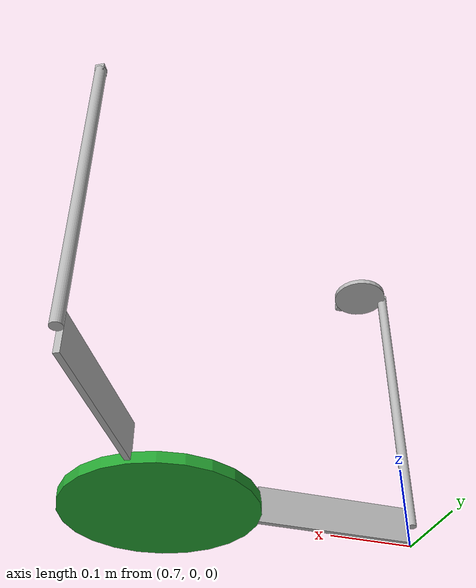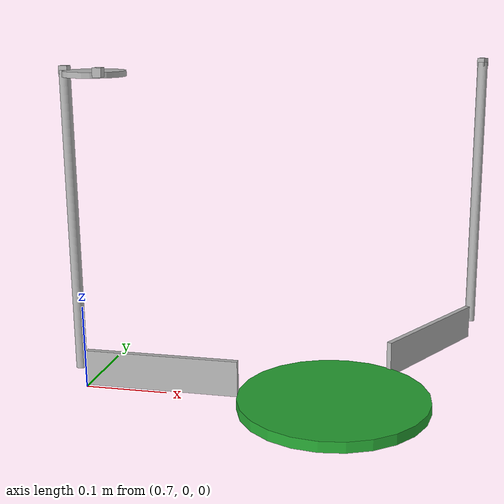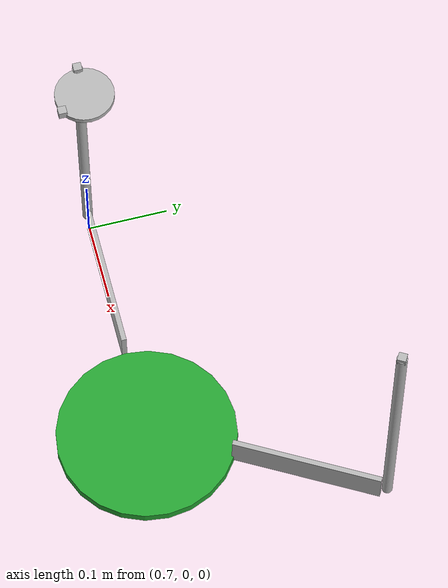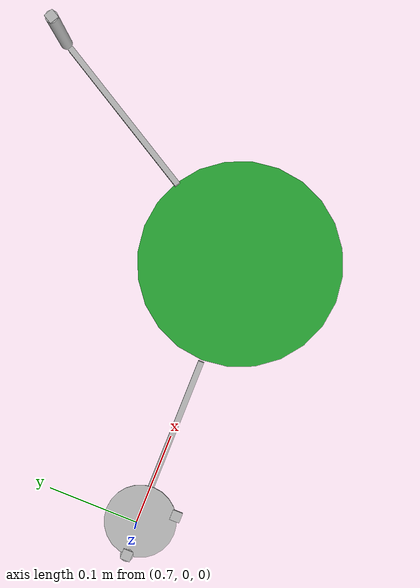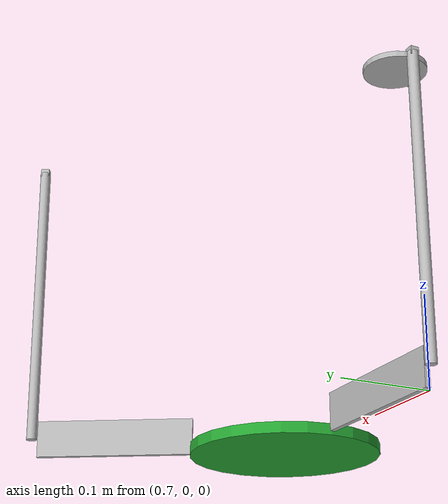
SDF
<?xml version="1.0"?>
<sdf version='1.7'>
    <model name='delta'>
    <joint name='world_base_joint' type='fixed'>
      <pose relative_to='__model__'>1 0 0 0 -0 0</pose>
      <parent>world</parent>
      <child>base_link</child>
    </joint>

    <link name='base_link'>
      <pose relative_to='world_base_joint'>0 0 0 0 -0 0</pose>
      <inertial>
        <pose>0 0 0.00635 0 -0 0</pose>
        <mass>12</mass>
        <inertia>
          <ixx>0.0371243</ixx>
          <ixy>0</ixy>
          <ixz>0</ixz>
          <iyy>0.0371243</iyy>
          <iyz>0</iyz>
          <izz>0.073926</izz>
        </inertia>
      </inertial>
      <collision name='base_link_collision'>
        <pose>0 0 0.00635 0 -0 0</pose>
        <geometry>
          <cylinder>
            <length>0.0127</length>
            <radius>0.111</radius>
          </cylinder>
        </geometry>
        <surface>
          <contact>
            <ode/>
          </contact>
          <friction>
            <ode/>
          </friction>
        </surface>
      </collision>
      <visual name='base_link_visual'>
        <pose>0 0 0.00635 0 -0 0</pose>
        <geometry>
          <cylinder>
            <length>0.0127</length>
            <radius>0.111</radius>
          </cylinder>
        </geometry>
        <material>
          <script>
            <name>Gazebo/Green</name>
            <uri>file://media/materials/scripts/gazebo.material</uri>
          </script>
        </material>
      </visual>
    </link>

    <joint name='base_arm_1_joint' type='revolute'>
      <pose relative_to='base_link'>-0.115 0 0.0254 0 -0 0</pose>
      <parent>base_link</parent>
      <child>arm_1_link</child>
      <axis>
        <xyz>0 1 0</xyz>
        <limit>
          <lower>-1.5708</lower>
          <upper>1.5708</upper>
          <effort>100</effort>
          <velocity>100</velocity>
        </limit>
        <dynamics>
          <damping>1</damping>
          <friction>1</friction>
          <spring_reference>0</spring_reference>
          <spring_stiffness>0</spring_stiffness>
        </dynamics>
      </axis>
    </joint>

    <link name='arm_1_link'>
      <pose relative_to='base_arm_1_joint'>0 0 0 0 -0 0</pose>
      <inertial>
        <pose>-0.09 0 0 0 -0 0</pose>
        <mass>6</mass>
        <inertia>
          <ixx>0.000944661</ixx>
          <ixy>0</ixy>
          <ixz>0</ixz>
          <iyy>0.018037</iyy>
          <iyz>0</iyz>
          <izz>0.0171327</izz>
        </inertia>
      </inertial>
      <collision name='arm_1_link_collision'>
        <pose>-0.09 0 0 0 -0 0</pose>
        <geometry>
          <box>
            <size>0.185 0.00635 0.043</size>
          </box>
        </geometry>
      </collision>
      <visual name='arm_1_link_visual'>
        <pose>-0.09 0 0 0 -0 0</pose>
        <geometry>
          <box>
            <size>0.185 0.00635 0.043</size>
          </box>
        </geometry>
      </visual>
    </link>

    <joint name='arm_forearm_1_joint' type='ball'>
        <pose relative_to='arm_1_link'>-0.19 0 0 0 -0 0</pose>
        <parent>arm_1_link</parent>
        <child>forearm_1_link</child>
        <axis>
        <xyz>1 0 0</xyz>
            <limit>
                <lower>-0.4188</lower>
                <upper>0.4188</upper>
            </limit>
            <dynamics>
                <friction>10</friction>
                <damping>10</damping>
            </dynamics>
        </axis>
        <axis>
            <xyz>0 1 0</xyz>
            <limit>
                <lower>-1.5708</lower>
                <upper>1.5708</upper>
            </limit>
            <dynamics>
                <friction>10</friction>
                <damping>10</damping>
            </dynamics>
        </axis>
        <axis>
            <xyz>0 0 1</xyz>
            <limit>
                <lower>-0.4188</lower>
                <upper>0.4188</upper>
            </limit>
            <dynamics>
                <friction>10</friction>
                <damping>10</damping>
            </dynamics>
        </axis>
    </joint>

    <link name='forearm_1_link'>
        <pose relative_to='arm_forearm_1_joint'>0 0 0 0 -0 0</pose>
        <inertial>
            <pose>0 0 0.175 0 -0 0</pose>
            <mass>4</mass>
            <inertia>
                <ixx>0.122513</ixx>
                <ixy>0</ixy>
                <ixz>0</ixz>
                <iyy>0.122513</iyy>
                <iyz>0</iyz>
                <izz>0.245</izz>
            </inertia>
        </inertial>

        <collision name='forearm_1_link_collision'>
            <pose>0 0 0.175 0 -0 0</pose>
            <geometry>
            <cylinder>
                <length>0.35</length>
                <radius>0.00635</radius>
            </cylinder>
            </geometry>
        </collision>
        <visual name='forearm_1_link_visual'>
            <pose>0 0 0.175 0 -0 0</pose>
            <geometry>
            <cylinder>
                <length>0.35</length>
                <radius>0.00635</radius>
            </cylinder>
            </geometry>
        </visual>
    </link>

    <joint name='base_arm_2_joint' type='revolute'>
      <pose relative_to='base_link'>0.055 0.096 0.0254 0 0 -2.0944</pose>
      <parent>base_link</parent>
      <child>arm_2_link</child>
      <axis>
        <xyz>0 1 0</xyz>
        <limit>
          <lower>-1.5708</lower>
          <upper>1.5708</upper>
          <effort>100</effort>
          <velocity>100</velocity>
        </limit>
        <dynamics>
          <damping>10</damping>
          <friction>10</friction>
          <spring_reference>0</spring_reference>
          <spring_stiffness>0</spring_stiffness>
        </dynamics>
      </axis>
    </joint>

    <link name='arm_2_link'>
      <pose relative_to='base_arm_2_joint'>0 0 0 0 -0 0</pose>
      <inertial>
        <pose>-0.09 0 0 0 -0 0</pose>
        <mass>6</mass>
        <inertia>
          <ixx>0.000944661</ixx>
          <ixy>0</ixy>
          <ixz>0</ixz>
          <iyy>0.018037</iyy>
          <iyz>0</iyz>
          <izz>0.0171327</izz>
        </inertia>
      </inertial>
      <collision name='arm_2_link_collision'>
        <pose>-0.09 0 0 0 -0 0</pose>
        <geometry>
          <box>
            <size>0.185 0.00635 0.043</size>
          </box>
        </geometry>
      </collision>
      <visual name='arm_2_link_visual'>
        <pose>-0.09 0 0 0 -0 0</pose>
        <geometry>
          <box>
            <size>0.185 0.00635 0.043</size>
          </box>
        </geometry>
      </visual>
    </link>

    <joint name='arm_forearm_2_joint' type='ball'>
        <pose relative_to='arm_2_link'>-0.19 0 0 0 -0 0</pose>
        <parent>arm_2_link</parent>
        <child>forearm_2_link</child>
        <axis>
          <xyz>1 0 0</xyz>
            <limit>
                <lower>-0.4188</lower>
                <upper>0.4188</upper>
            </limit>
            <dynamics>
                <friction>10</friction>
                <damping>10</damping>
            </dynamics>
        </axis>
        <axis>
            <xyz>0 1 0</xyz>
            <limit>
                <lower>-1.5708</lower>
                <upper>1.5708</upper>
            </limit>
            <dynamics>
                <friction>10</friction>
                <damping>10</damping>
            </dynamics>
        </axis>
        <axis>
            <xyz>0 0 1</xyz>
            <limit>
                <lower>-0.4188</lower>
                <upper>0.4188</upper>
            </limit>
            <dynamics>
                <friction>10</friction>
                <damping>10</damping>
            </dynamics>
        </axis>
    </joint>

    <link name='forearm_2_link'>
        <pose relative_to='arm_forearm_2_joint'>0 0 0 0 -0 0</pose>
        <inertial>
            <pose>0 0 0.175 0 -0 0</pose>
            <mass>4</mass>
            <inertia>
                <ixx>0.122513</ixx>
                <ixy>0</ixy>
                <ixz>0</ixz>
                <iyy>0.122513</iyy>
                <iyz>0</iyz>
                <izz>0.245</izz>
            </inertia>
        </inertial>

        <collision name='forearm_2_link_collision'>
            <pose>0 0 0.175 0 -0 0</pose>
            <geometry>
            <cylinder>
                <length>0.35</length>
                <radius>0.00635</radius>
            </cylinder>
            </geometry>
        </collision>
        <visual name='forearm_2_link_visual'>
            <pose>0 0 0.175 0 -0 0</pose>
            <geometry>
            <cylinder>
                <length>0.35</length>
                <radius>0.00635</radius>
            </cylinder>
            </geometry>
        </visual>
    </link>

    <joint name='forearm_1_virtual_joint' type='ball'>
      <pose relative_to='forearm_1_link'>0 0 0.35 0 -0 0</pose>
      <parent>forearm_1_link</parent>
      <child>virtual_1_link</child>
      <axis>
          <xyz>1 0 0</xyz>
            <limit>
                <lower>-0.4188</lower>
                <upper>0.4188</upper>
            </limit>
            <dynamics>
                <friction>10</friction>
                <damping>10</damping>
            </dynamics>
        </axis>
        <axis>
            <xyz>0 1 0</xyz>
            <limit>
                <lower>-1.5708</lower>
                <upper>1.5708</upper>
            </limit>
            <dynamics>
                <friction>10</friction>
                <damping>10</damping>
            </dynamics>
        </axis>
        <axis>
            <xyz>0 0 1</xyz>
            <limit>
                <lower>-0.4188</lower>
                <upper>0.4188</upper>
            </limit>
            <dynamics>
                <friction>10</friction>
                <damping>10</damping>
            </dynamics>
        </axis>
    </joint>

    <link name='virtual_1_link'>
        <pose relative_to='forearm_1_virtual_joint'>0 0 0 0 -0 0</pose>
        <inertial>
          <pose>0 0 0 0 -0 0</pose>
          <mass>0.1</mass>
          <inertia>
            <ixx>1.66667e-06</ixx>
            <ixy>0</ixy>
            <ixz>0</ixz>
            <iyy>1.66667e-06</iyy>
            <iyz>0</iyz>
            <izz>1.66667e-06</izz>
          </inertia>
        </inertial>
        <collision name='virtual_1_link_collision'>
            <pose>0 0 0 0 -0 0</pose>
            <geometry>
            <box>
                <size>0.01 0.01 0.01</size>
            </box>
            </geometry>
        </collision>
        <visual name='virtual_1_link_visual'>
            <pose>0 0 0 0 -0 0</pose>
            <geometry>
            <box>
                <size>0.01 0.01 0.01</size>
            </box>
            </geometry>
        </visual>
    </link>

    <joint name='forearm_2_virtual_joint' type='ball'>
      <pose relative_to='forearm_2_link'>0 0 0.35 0 -0 0</pose>
      <parent>forearm_2_link</parent>
      <child>virtual_2_link</child>
      <axis>
          <xyz>1 0 0</xyz>
            <limit>
                <lower>-0.4188</lower>
                <upper>0.4188</upper>
            </limit>
            <dynamics>
                <friction>10</friction>
                <damping>10</damping>
            </dynamics>
        </axis>
        <axis>
            <xyz>0 1 0</xyz>
            <limit>
                <lower>-1.5708</lower>
                <upper>1.5708</upper>
            </limit>
            <dynamics>
                <friction>10</friction>
                <damping>10</damping>
            </dynamics>
        </axis>
        <axis>
            <xyz>0 0 1</xyz>
            <limit>
                <lower>-0.4188</lower>
                <upper>0.4188</upper>
            </limit>
            <dynamics>
                <friction>10</friction>
                <damping>10</damping>
            </dynamics>
        </axis>
    </joint>

    <link name='virtual_2_link'>
        <pose relative_to='forearm_2_virtual_joint'>0 0 0 0 -0 0</pose>
        <inertial>
          <pose>0 0 0 0 -0 0</pose>
          <mass>0.1</mass>
          <inertia>
            <ixx>1.66667e-06</ixx>
            <ixy>0</ixy>
            <ixz>0</ixz>
            <iyy>1.66667e-06</iyy>
            <iyz>0</iyz>
            <izz>1.66667e-06</izz>
          </inertia>
        </inertial>
        <collision name='virtual_2_link_collision'>
            <pose>0 0 0 0 -0 0</pose>
            <geometry>
            <box>
                <size>0.01 0.01 0.01</size>
            </box>
            </geometry>
        </collision>
        <visual name='virtual_2_link_visual'>
            <pose>0 0 0 0 -0 0</pose>
            <geometry>
            <box>
                <size>0.01 0.01 0.01</size>
            </box>
            </geometry>
        </visual>
    </link>

    <link name='mobile_platform_link'>
        <pose relative_to='virtual_1_link'>0.035 0 0 0 -0 0</pose>
        <inertial>
            <pose>0 0 -0.003175 0 -0 0</pose>
            <mass>4</mass>
            <inertia>
            <ixx>0.00123844</ixx>
            <ixy>0</ixy>
            <ixz>0</ixz>
            <iyy>0.00123844</iyy>
            <iyz>0</iyz>
            <izz>0.00245</izz>
            </inertia>
        </inertial>
        <collision name='mobile_platform_link_collision'>
            <pose>0 0 -0.003175 0 -0 0</pose>
            <geometry>
            <cylinder>
                <length>0.00635</length>
                <radius>0.035</radius>
            </cylinder>
            </geometry>
        </collision>
        <visual name='mobile_platform_link_visual'>
            <pose>0 0 -0.003175 0 -0 0</pose>
            <geometry>
            <cylinder>
                <length>0.00635</length>
                <radius>0.035</radius>
            </cylinder>
            </geometry>
        </visual>
    </link>

    <joint name='mobile_virtual_a' type='fixed'>
      <pose relative_to='mobile_platform_link'>-0.035 0 0 0 -0 0</pose>
      <parent>mobile_platform_link</parent>
      <child>virtual_a_link</child>
    </joint>

    <link name='virtual_a_link'>
        <pose relative_to='mobile_virtual_a'>0 0 0 0 -0 0</pose>
        <inertial>
          <pose>0 0 0 0 -0 0</pose>
          <mass>0.1</mass>
          <inertia>
            <ixx>1.66667e-06</ixx>
            <ixy>0</ixy>
            <ixz>0</ixz>
            <iyy>1.66667e-06</iyy>
            <iyz>0</iyz>
            <izz>1.66667e-06</izz>
          </inertia>
        </inertial>
        <collision name='virtual_a_link_collision'>
            <pose>0 0 0 0 -0 0</pose>
            <geometry>
            <box>
                <size>0.01 0.01 0.01</size>
            </box>
            </geometry>
        </collision>
        <visual name='virtual_a_link_visual'>
            <pose>0 0 0 0 -0 0</pose>
            <geometry>
            <box>
                <size>0.01 0.01 0.01</size>
            </box>
            </geometry>
        </visual>
    </link>

    <joint name='mobile_virtual_b' type='fixed'>
      <pose relative_to='mobile_platform_link'>0.0175 -0.03031 0 0 -0 0</pose>
      <parent>mobile_platform_link</parent>
      <child>virtual_b_link</child>
    </joint>

    <link name='virtual_b_link'>
        <pose relative_to='mobile_virtual_b'>0 0 0 0 -0 0</pose>
        <inertial>
          <pose>0 0 0 0 -0 0</pose>
          <mass>0.1</mass>
          <inertia>
            <ixx>1.66667e-06</ixx>
            <ixy>0</ixy>
            <ixz>0</ixz>
            <iyy>1.66667e-06</iyy>
            <iyz>0</iyz>
            <izz>1.66667e-06</izz>
          </inertia>
        </inertial>
        <collision name='virtual_b_link_collision'>
            <pose>0 0 0 0 -0 0</pose>
            <geometry>
            <box>
                <size>0.01 0.01 0.01</size>
            </box>
            </geometry>
        </collision>
        <visual name='virtual_b_link_visual'>
            <pose>0 0 0 0 -0 0</pose>
            <geometry>
            <box>
                <size>0.01 0.01 0.01</size>
            </box>
            </geometry>
        </visual>
    </link>

    <joint name="virtual_1_virtual_a" type="fixed">
      <pose relative_to='virtual_1_link'>0 0 0 0 -0 0</pose>

      <parent>virtual_1_link</parent>
      <child>virtual_a_link</child>
    </joint>

    <joint name="virtual_2_virtual_b" type="fixed">
      <pose>0 0 0 0 -0 0</pose>

      <parent>virtual_b_link</parent>
      <child>virtual_2_link</child>
    </joint>

    <plugin name='gazebo_ros_joint_state_publisher' filename='libgazebo_ros_joint_state_publisher.so'>
        <update_rate>20</update_rate>
        <joint_name>base_arm_1_joint</joint_name>
        <joint_name>arm_forearm_1_joint</joint_name>

        <joint_name>base_arm_2_joint</joint_name>
        <joint_name>arm_forearm_2_joint</joint_name>

        <joint_name>virtual_1_mobile_platform_joint</joint_name>
    </plugin>
    <static>0</static>
    <plugin name='gazebo_ros_joint_pose_trajectory' filename='libgazebo_ros_joint_pose_trajectory.so'>
        <update_rate>20</update_rate>
        <joint_name>base_arm_1_joint</joint_name>
            <joint_name>arm_forearm_1_joint</joint_name>

            <joint_name>base_arm_2_joint</joint_name>
            <joint_name>arm_forearm_2_joint</joint_name>

            <joint_name>virtual_1_mobile_platform_joint</joint_name>
    </plugin>
    </model>
</sdf>
